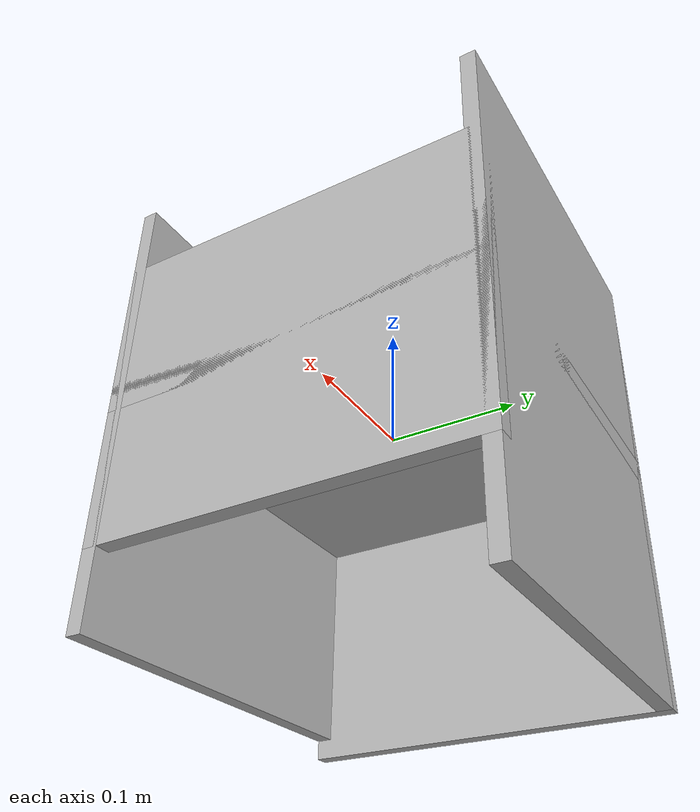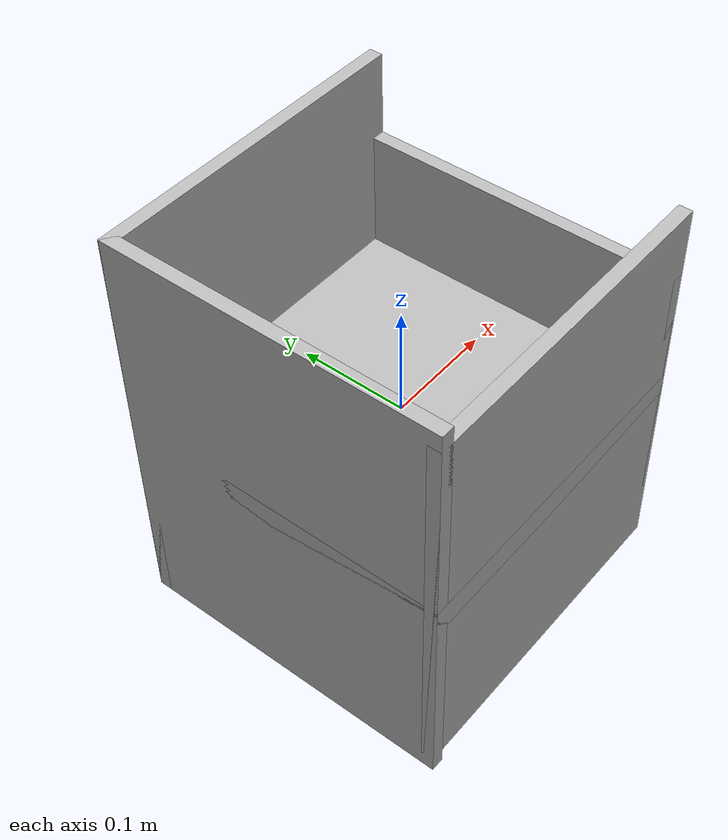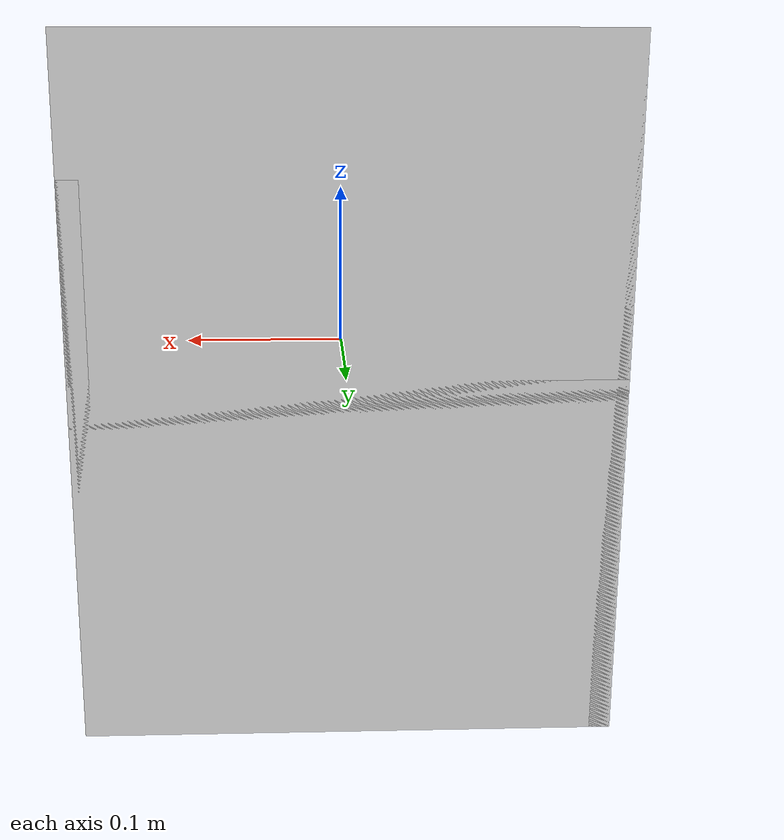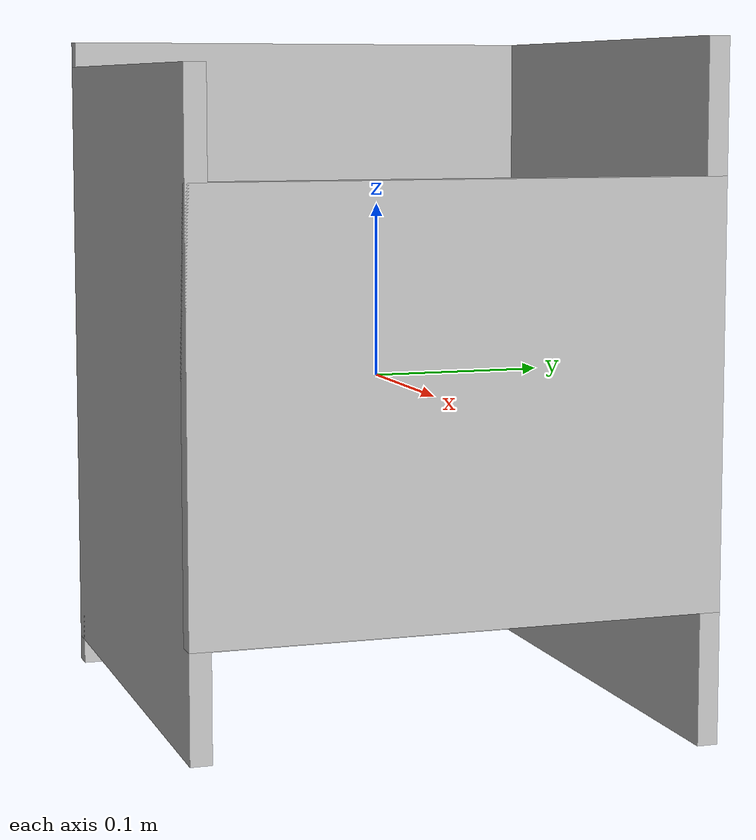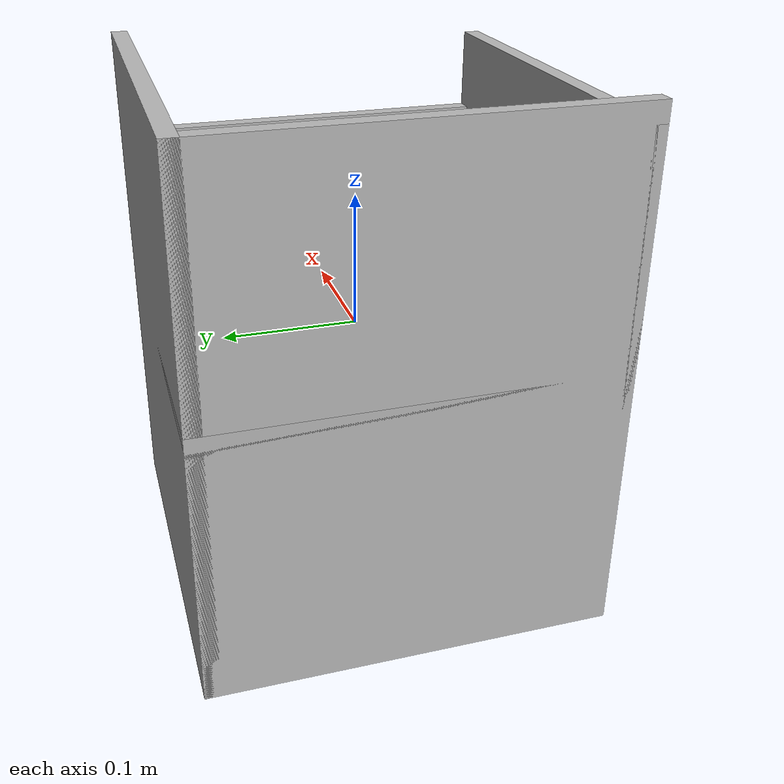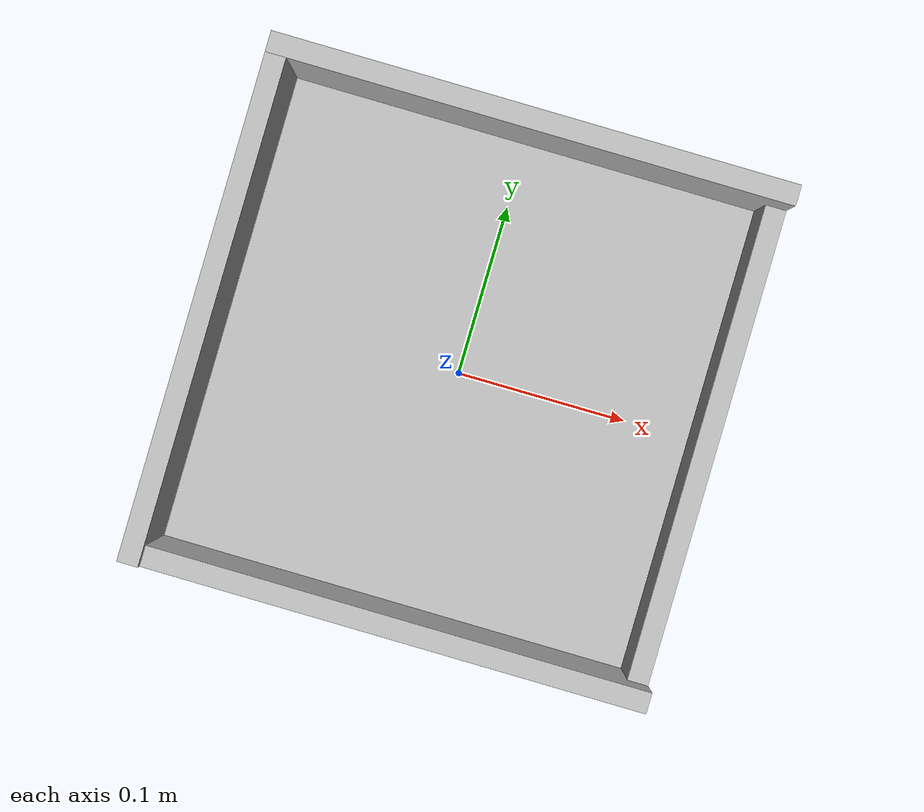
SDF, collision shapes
<?xml version='1.0'?>
<sdf version='1.6'>
  <model name='blue_target'>
    <static>false</static>
    <link name="link">
      <self_collide>0</self_collide>
      <enable_wind>0</enable_wind>
      <kinematic>0</kinematic>
      <pose frame=''>0 0 0 0 -0 0</pose>
      <gravity>1</gravity>
      <inertial>
        <mass>1</mass>
        <pose frame=''>0 0 0 0 -0 0</pose>
        <inertia>
          <ixx>1</ixx>
          <ixy>0</ixy>
          <ixz>0</ixz>
          <iyy>1</iyy>
          <iyz>0</iyz>
          <izz>1</izz>
        </inertia>
      </inertial>
      <visual name='visual'>
        <pose frame=''>0 0 0.01 0 -0 0</pose>
        <geometry>
          <mesh>
            <scale>0.5 0.5 0.5</scale>
            <uri>model://blue_target/meshes/blue_target.dae</uri>
          </mesh>
        </geometry>
      </visual>
            <collision name='front_wall'>
        <laser_retro>0</laser_retro>
        <max_contacts>10</max_contacts>
        <pose frame=''>0.144 0 0 0 -0 0</pose>
        <geometry>
          <box>
            <size>0.012 0.3 0.24</size>
          </box>
        </geometry>
        <surface>
          <friction>
            <ode>
              <mu>1</mu>
              <mu2>1</mu2>
              <fdir1>0 0 0</fdir1>
              <slip1>0</slip1>
              <slip2>0</slip2>
            </ode>
            <torsional>
              <coefficient>1</coefficient>
              <patch_radius>0</patch_radius>
              <surface_radius>0</surface_radius>
              <use_patch_radius>1</use_patch_radius>
              <ode>
                <slip>0</slip>
              </ode>
            </torsional>
          </friction>
          <bounce>
            <restitution_coefficient>0</restitution_coefficient>
            <threshold>1e+06</threshold>
          </bounce>
          <contact>
            <collide_without_contact>0</collide_without_contact>
            <collide_without_contact_bitmask>1</collide_without_contact_bitmask>
            <collide_bitmask>1</collide_bitmask>
            <ode>
              <soft_cfm>0</soft_cfm>
              <soft_erp>0.2</soft_erp>
              <kp>1e+13</kp>
              <kd>1</kd>
              <max_vel>0.01</max_vel>
              <min_depth>0</min_depth>
            </ode>
            <bullet>
              <split_impulse>1</split_impulse>
              <split_impulse_penetration_threshold>-0.01</split_impulse_penetration_threshold>
              <soft_cfm>0</soft_cfm>
              <soft_erp>0.2</soft_erp>
              <kp>1e+13</kp>
              <kd>1</kd>
            </bullet>
          </contact>
        </surface>
      </collision>
      <collision name='right_wall'>
        <laser_retro>0</laser_retro>
        <max_contacts>10</max_contacts>
        <pose frame=''>0 -0.144 0 0 -0 0</pose>
        <geometry>
          <box>
            <size>0.3 0.012 0.36</size>
          </box>
        </geometry>
        <surface>
          <friction>
            <ode>
              <mu>1</mu>
              <mu2>1</mu2>
              <fdir1>0 0 0</fdir1>
              <slip1>0</slip1>
              <slip2>0</slip2>
            </ode>
            <torsional>
              <coefficient>1</coefficient>
              <patch_radius>0</patch_radius>
              <surface_radius>0</surface_radius>
              <use_patch_radius>1</use_patch_radius>
              <ode>
                <slip>0</slip>
              </ode>
            </torsional>
          </friction>
          <bounce>
            <restitution_coefficient>0</restitution_coefficient>
            <threshold>1e+06</threshold>
          </bounce>
          <contact>
            <collide_without_contact>0</collide_without_contact>
            <collide_without_contact_bitmask>1</collide_without_contact_bitmask>
            <collide_bitmask>1</collide_bitmask>
            <ode>
              <soft_cfm>0</soft_cfm>
              <soft_erp>0.2</soft_erp>
              <kp>1e+13</kp>
              <kd>1</kd>
              <max_vel>0.01</max_vel>
              <min_depth>0</min_depth>
            </ode>
            <bullet>
              <split_impulse>1</split_impulse>
              <split_impulse_penetration_threshold>-0.01</split_impulse_penetration_threshold>
              <soft_cfm>0</soft_cfm>
              <soft_erp>0.2</soft_erp>
              <kp>1e+13</kp>
              <kd>1</kd>
            </bullet>
          </contact>
        </surface>
      </collision>
      <collision name='bottom'>
        <laser_retro>0</laser_retro>
        <max_contacts>10</max_contacts>
        <pose frame=''>0 0 0 0 -0 0</pose>
        <geometry>
          <box>
            <size>0.3 0.3 0.025</size>
          </box>
        </geometry>
        <surface>
          <friction>
            <ode>
              <mu>1</mu>
              <mu2>1</mu2>
              <fdir1>0 0 0</fdir1>
              <slip1>0</slip1>
              <slip2>0</slip2>
            </ode>
            <torsional>
              <coefficient>1</coefficient>
              <patch_radius>0</patch_radius>
              <surface_radius>0</surface_radius>
              <use_patch_radius>1</use_patch_radius>
              <ode>
                <slip>0</slip>
              </ode>
            </torsional>
          </friction>
          <bounce>
            <restitution_coefficient>0</restitution_coefficient>
            <threshold>1e+06</threshold>
          </bounce>
          <contact>
            <collide_without_contact>0</collide_without_contact>
            <collide_without_contact_bitmask>1</collide_without_contact_bitmask>
            <collide_bitmask>1</collide_bitmask>
            <ode>
              <soft_cfm>0</soft_cfm>
              <soft_erp>0.2</soft_erp>
              <kp>1e+13</kp>
              <kd>1</kd>
              <max_vel>0.01</max_vel>
              <min_depth>0</min_depth>
            </ode>
            <bullet>
              <split_impulse>1</split_impulse>
              <split_impulse_penetration_threshold>-0.01</split_impulse_penetration_threshold>
              <soft_cfm>0</soft_cfm>
              <soft_erp>0.2</soft_erp>
              <kp>1e+13</kp>
              <kd>1</kd>
            </bullet>
          </contact>
        </surface>
      </collision>
      <collision name='left_wall'>
        <laser_retro>0</laser_retro>
        <max_contacts>10</max_contacts>
        <pose frame=''>0 0.144 0 0 -0 0</pose>
        <geometry>
          <box>
            <size>0.3 0.012 0.39</size>
          </box>
        </geometry>
        <surface>
          <friction>
            <ode>
              <mu>1</mu>
              <mu2>1</mu2>
              <fdir1>0 0 0</fdir1>
              <slip1>0</slip1>
              <slip2>0</slip2>
            </ode>
            <torsional>
              <coefficient>1</coefficient>
              <patch_radius>0</patch_radius>
              <surface_radius>0</surface_radius>
              <use_patch_radius>1</use_patch_radius>
              <ode>
                <slip>0</slip>
              </ode>
            </torsional>
          </friction>
          <bounce>
            <restitution_coefficient>0</restitution_coefficient>
            <threshold>1e+06</threshold>
          </bounce>
          <contact>
            <collide_without_contact>0</collide_without_contact>
            <collide_without_contact_bitmask>1</collide_without_contact_bitmask>
            <collide_bitmask>1</collide_bitmask>
            <ode>
              <soft_cfm>0</soft_cfm>
              <soft_erp>0.2</soft_erp>
              <kp>1e+13</kp>
              <kd>1</kd>
              <max_vel>0.01</max_vel>
              <min_depth>0</min_depth>
            </ode>
            <bullet>
              <split_impulse>1</split_impulse>
              <split_impulse_penetration_threshold>-0.01</split_impulse_penetration_threshold>
              <soft_cfm>0</soft_cfm>
              <soft_erp>0.2</soft_erp>
              <kp>1e+13</kp>
              <kd>1</kd>
            </bullet>
          </contact>
        </surface>
      </collision>
      <collision name='back_wall'>
        <laser_retro>0</laser_retro>
        <max_contacts>10</max_contacts>
        <pose frame=''>-0.144 0 0 0 -0 0</pose>
        <geometry>
          <box>
            <size>0.012 0.3 0.39</size>
          </box>
        </geometry>
        <surface>
          <friction>
            <ode>
              <mu>1</mu>
              <mu2>1</mu2>
              <fdir1>0 0 0</fdir1>
              <slip1>0</slip1>
              <slip2>0</slip2>
            </ode>
            <torsional>
              <coefficient>1</coefficient>
              <patch_radius>0</patch_radius>
              <surface_radius>0</surface_radius>
              <use_patch_radius>1</use_patch_radius>
              <ode>
                <slip>0</slip>
              </ode>
            </torsional>
          </friction>
          <bounce>
            <restitution_coefficient>0</restitution_coefficient>
            <threshold>1e+06</threshold>
          </bounce>
          <contact>
            <collide_without_contact>0</collide_without_contact>
            <collide_without_contact_bitmask>1</collide_without_contact_bitmask>
            <collide_bitmask>1</collide_bitmask>
            <ode>
              <soft_cfm>0</soft_cfm>
              <soft_erp>0.2</soft_erp>
              <kp>1e+13</kp>
              <kd>1</kd>
              <max_vel>0.01</max_vel>
              <min_depth>0</min_depth>
            </ode>
            <bullet>
              <split_impulse>1</split_impulse>
              <split_impulse_penetration_threshold>-0.01</split_impulse_penetration_threshold>
              <soft_cfm>0</soft_cfm>
              <soft_erp>0.2</soft_erp>
              <kp>1e+13</kp>
              <kd>1</kd>
            </bullet>
          </contact>
        </surface>
      </collision>
    </link>
  </model>
</sdf>
